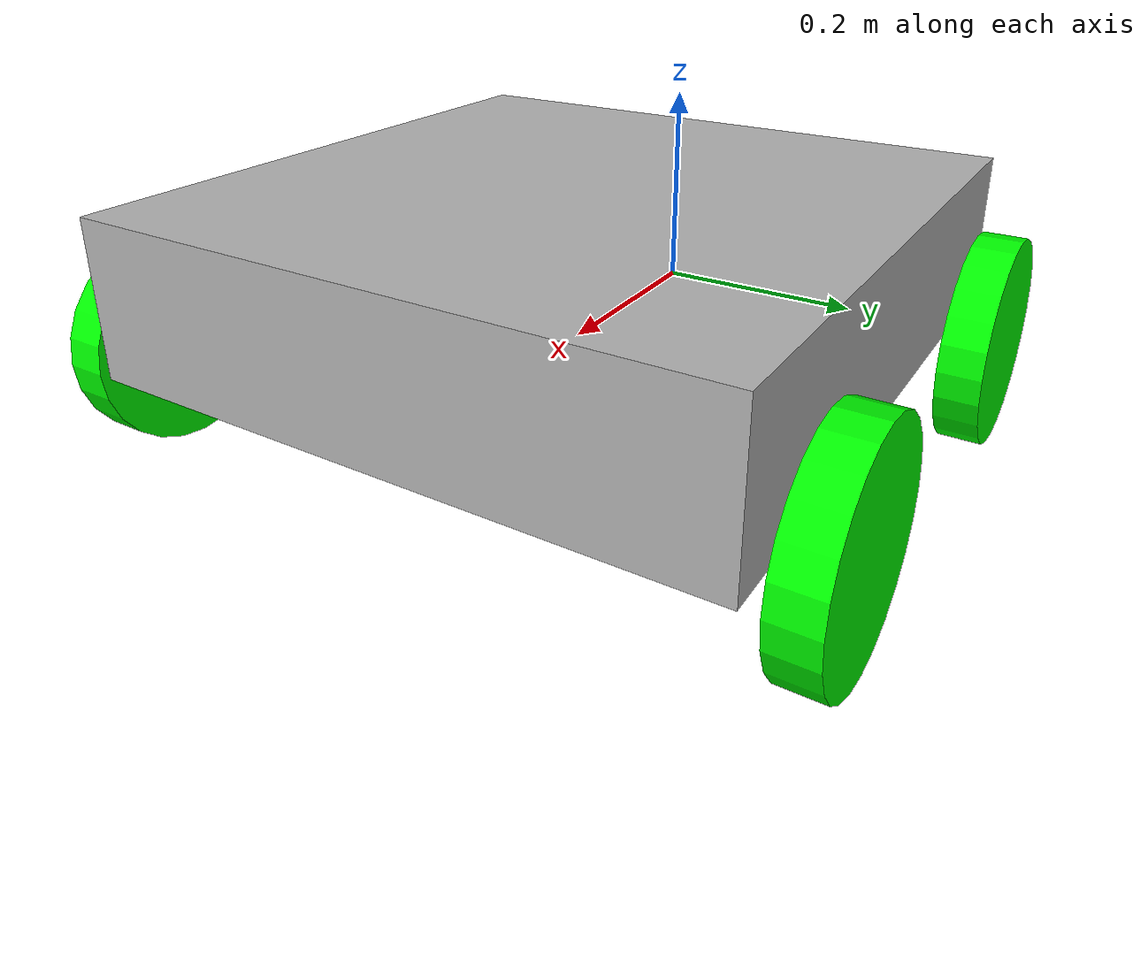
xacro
<?xml version="1.0"?>
<robot xmlns:xacro="http://www.ros.org/wiki/xacro">

    <xacro:include filename="inertial_macros.xacro"/>

    <material name="green">
        <color rgba="0 1 0 1" />
    </material>
    <material name="gray">
        <color rgba="0.7 0.7 0.7 1" />
    </material>
    <material name="black">
        <color rgba="0 0 0 1" />
    </material>
    <material name="blue">
        <color rgba="0.2 0.2 1 1" />
    </material>
    <link name="base_link">

    </link>
    <!-- vex_chassis link -->
    <joint name="vex_chassis_joint" type="fixed">
        <parent link="base_link"/>
        <child link="vex_chassis"/>
        <origin xyz="-0.1 0 0"/>
    </joint>
    <link name="vex_chassis">
        <visual>
            <origin xyz=".3 0 0.075"/>
            <geometry>
                <box size="0.6 0.6 0.15"/>

            </geometry>
            <material name="gray"/>
        </visual>
        <collision>
            <origin xyz=".3 0 0.075"/>
            <geometry>
                <box size="0.6 0.6 0.15"/>
            </geometry>
        </collision>
        <xacro:inertial_box mass="0.5" x="0.6" y="0.6" z="0.15">
            <origin xyz=".3 0 0.075" rpy="0 0 0"/>
        </xacro:inertial_box>
    </link>
    <gazebo reference="vex_chassis">
        <material>Gazebo/Gray</material>
    </gazebo>

<!-- left wheel link -->
<joint name="left_wheel_joint" type='continuous'>
            <parent link="base_link"/>
            <child link="left_wheel"/>
            <origin xyz=".4 0.335 0" rpy="-${pi/2} 0 0"/>
            <axis xyz="0 0 1"/>
        </joint>
        <link name="left_wheel">
            <visual>
                <geometry>
                    <cylinder radius="0.1" length="0.04"/>
                </geometry>
                <material name="green"/>
            </visual>

            <collision>
                <geometry>
                    <cylinder radius="0.1" length="0.04"/>
                </geometry>
            </collision>
            <xacro:inertial_cylinder mass="0.1" radius="0.1" length="0.04">
                <origin xyz="0 0 0" rpy="0 0 0"/>
            </xacro:inertial_cylinder>
        </link>

        <gazebo reference="left_wheel">
            <material>Gazebo/Green</material>
        </gazebo>

        <!-- left wheel2 link -->
        <joint name="left_wheel2_joint" type='fixed'>
            <parent link="base_link"/>
            <child link="left_wheel2"/>
            <origin xyz="0 0.335 0" rpy="-${pi/2} 0 0"/>
            <axis xyz="0 0 1"/>
        </joint>

        <link name="left_wheel2">
            <visual>
                <geometry>
                    <cylinder radius="0.1" length="0.04"/>
                </geometry>
                <material name="green"/>
            </visual>
            <collision>
                <geometry>
                    <cylinder radius="0.1" length="0.04"/>
                </geometry>
            </collision>
            <xacro:inertial_cylinder mass="0.1" radius="0.1" length="0.04">
                <origin xyz="0 0 0" rpy="0 0 0"/>
            </xacro:inertial_cylinder>
        </link>

        <gazebo reference="left_wheel2">
            <material>Gazebo/Green</material>
            <mu1 value="0.001"/>
            <mu2 value="0.001"/>
        </gazebo>

        <!-- right wheel link -->
        <joint name="right_wheel_joint" type='continuous'>
            <parent link="base_link"/>
            <child link="right_wheel"/>
            <origin xyz="0.4 -0.335 0" rpy="${pi/2} 0 0"/>
            <axis xyz="0 0 -1"/>
        </joint>
        <link name="right_wheel">
            <visual>
                <geometry>
                    <cylinder radius="0.1" length="0.04"/>
                </geometry>
                <material name="green"/>
            </visual>
            <collision>
                <geometry>
                    <cylinder radius="0.1" length="0.04"/>
                </geometry>
            </collision>
            <xacro:inertial_cylinder mass="0.15" radius="0.1" length="0.04">
                <origin xyz="0 0 0" rpy="0 0 0"/>
            </xacro:inertial_cylinder>
        </link>

        <gazebo reference="right_wheel">
            <material>Gazebo/Green</material>
        </gazebo>

        <!-- right wheel2 link -->
        <joint name="right_wheel2_joint" type='fixed'>
            <parent link="base_link"/>
            <child link="right_wheel2"/>
            <origin xyz="0 -0.335 0" rpy="${pi/2} 0 0"/>
            <axis xyz="0 0 -1"/>
        </joint>

        <link name="right_wheel2">
            <visual>
                <geometry>
                    <cylinder radius="0.1" length="0.04"/>
                </geometry>
                <material name="green"/>
            </visual>
            <collision>
                <geometry>
                    <cylinder radius="0.1" length="0.04"/>
                </geometry>
            </collision>
            <xacro:inertial_cylinder mass="0.1" radius="0.1" length="0.04">
                <origin xyz="0 0 0" rpy="0 0 0"/>
            </xacro:inertial_cylinder>
        </link>

        <gazebo reference="right_wheel2">
            <material>Gazebo/Green</material>
            <mu1 value="0.001"/>
            <mu2 value="0.001"/>
        </gazebo>

    </robot>

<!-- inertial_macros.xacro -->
<robot xmlns:xacro="http://www.ros.org/wiki/xacro" >

    <!-- Specify some standard inertial calculations https://en.wikipedia.org/wiki/List_of_moments_of_inertia -->
    <!-- These make use of xacro's mathematical functionality -->

    <xacro:macro name="inertial_sphere" params="mass radius *origin">
        <inertial>
            <xacro:insert_block name="origin"/>
            <mass value="${mass}" />
            <inertia ixx="${(2/5) * mass * (radius*radius)}" ixy="0.0" ixz="0.0"
                    iyy="${(2/5) * mass * (radius*radius)}" iyz="0.0"
                    izz="${(2/5) * mass * (radius*radius)}" />
        </inertial>
    </xacro:macro>

    <xacro:macro name="inertial_box" params="mass x y z *origin">
        <inertial>
            <xacro:insert_block name="origin"/>
            <mass value="${mass}" />
            <inertia ixx="${(1/12) * mass * (y*y+z*z)}" ixy="0.0" ixz="0.0"
                    iyy="${(1/12) * mass * (x*x+z*z)}" iyz="0.0"
                    izz="${(1/12) * mass * (x*x+y*y)}" />
        </inertial>
    </xacro:macro>

    <xacro:macro name="inertial_cylinder" params="mass length radius *origin">
        <inertial>
            <xacro:insert_block name="origin"/>
            <mass value="${mass}" />
            <inertia ixx="${(1/12) * mass * (3*radius*radius + length*length)}" ixy="0.0" ixz="0.0"
                    iyy="${(1/12) * mass * (3*radius*radius + length*length)}" iyz="0.0"
                    izz="${(1/2) * mass * (radius*radius)}" />
        </inertial>
    </xacro:macro>

</robot>
